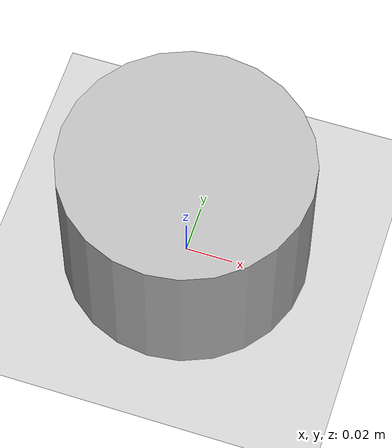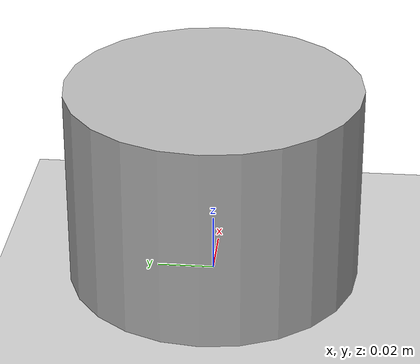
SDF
<?xml version="1.0" ?>
<sdf version="1.5">
  <world name="default">

    <!-- A global light source -->
    <include>
      <uri>model://sun</uri>
    </include>

    <!-- A ground plane -->
    <include>
      <uri>model://ground_plane</uri>
    </include>

    <model name="velodyne_VLP-16">
    <!-- Give the base link a unique name -->
    <link name="base">

      <inertial>
        <mass>0.83</mass>
        <inertia>
          <ixx>0.000909131</ixx>
          <iyy>0.000909131</iyy>
          <izz>0.001107105</izz>
          <ixy>0</ixy>
          <ixz>0</ixz>
          <iyz>0</iyz>
        </inertia>
      </inertial>

      <!-- Offset the base by half the lenght of the cylinder -->
      <pose>0 0 0.03585 0 0 0</pose>
      <collision name="base_collision">
        <geometry>
          <cylinder>
            <!-- Radius and length provided by Velodyne -->
            <radius>.05165</radius>
            <length>.0717</length>
          </cylinder>
        </geometry>
      </collision>

      <!-- The visual is mostly a copy of the collision -->
      <visual name="base_visual">
        <geometry>
          <cylinder>
            <radius>.05165</radius>
            <length>.0717</length>
          </cylinder>
        </geometry>
      </visual>

      <!-- Add a ray sensor, and give it a name -->
      <sensor type="ray" name="sensor">

        <pose>0 0 0 0 0 0</pose>

        <!-- Enable visualization to see the rays in the GUI -->
        <visualize>true</visualize>

        <!-- Set the update rate of the sensor -->
        <update_rate>30</update_rate>

        <ray>

          <!-- The scan element contains the horizontal and vertical beams.
          We are leaving out the vertical beams for this tutorial. -->
          <scan>

            <!-- The horizontal beams -->
            <horizontal>
              <!-- The velodyne has 16 beams(samples) -->
              <samples>16</samples>

              <resolution>1</resolution>

              <!-- Minimum angle in radians -->
              <min_angle>0</min_angle>

              <!-- Maximum angle in radians -->
              <max_angle>6.28319</max_angle>
            </horizontal>

            <vertical>
              <!-- The velodyne has 16 beams(samples) -->
              <samples>16</samples>

              <resolution>1</resolution>

              <!-- Minimum angle in radians -->
              <min_angle>-0.261799</min_angle>

              <!-- Maximum angle in radians -->
              <max_angle>0.261799</max_angle>
            </vertical>
          </scan>

          <!-- Range defines characteristics of an individual beam -->
          <range>

            <!-- Minimum distance of the beam -->
            <min>0.0717</min>

            <!-- Maximum distance of the beam -->
            <max>10</max>

            <!-- Linear resolution of the beam -->
            <resolution>0.02</resolution>
          </range>
        </ray>
      </sensor>
    </link>
    </model>
  </world>
</sdf>
